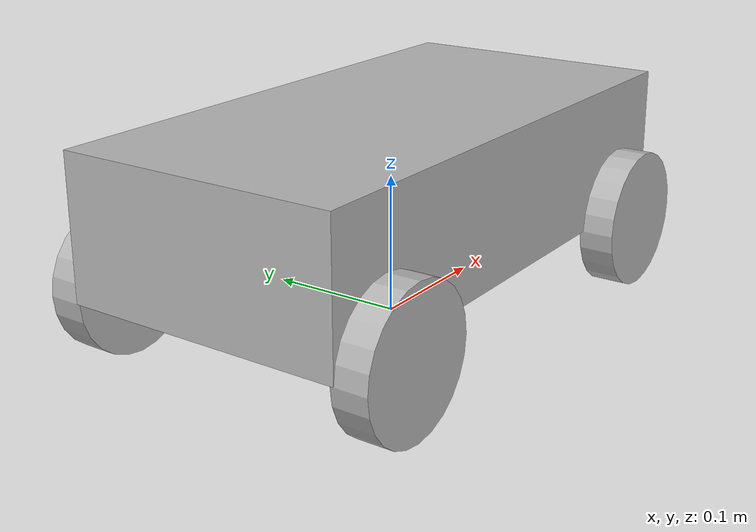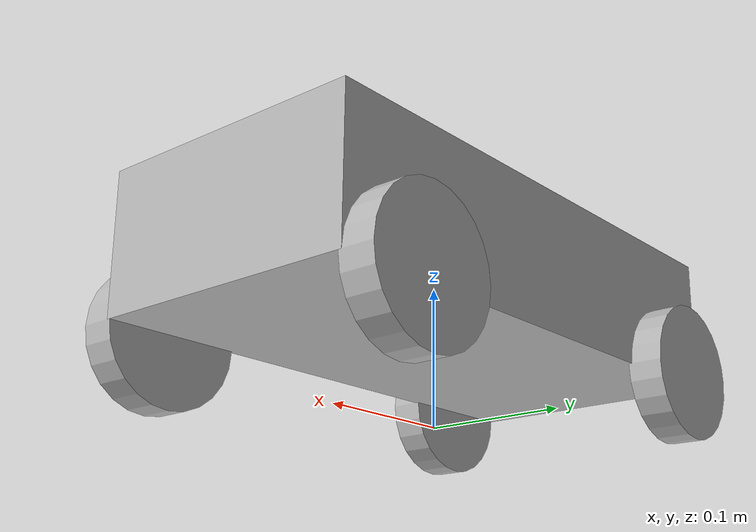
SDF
<?xml version='1.0'?>
<sdf version='1.3'>
  <model name="volksbot">
  <static>false</static>

<!-- CHASSIS -->
  <link name='chassis'>
    <pose>0 0 .1 0 0 0</pose>
    <collision name='collision'>
        <geometry>
            <box>
                <size>.4 .2 .1</size>
            </box>
        </geometry>
    </collision>
    <visual name='visual'>
        <geometry>
            <box>
                <size>.4 .2 .1</size>
            </box>
        </geometry>
    </visual>
    </link>

  <!-- LEFT back Wheel -->
    <link name="left_back_wheel">
        <pose>0.15 0.11 0.05 0 1.5707 1.5707</pose>
        <collision name="collision">
            <geometry>
                <cylinder>
                    <radius>.05</radius>
                    <length>.025</length>
                </cylinder>
            </geometry>
        </collision>
        <visual name="visual">
            <geometry>
                <cylinder>
                    <radius>.05</radius>
                    <length>.025</length>
                </cylinder>
            </geometry>
        </visual>
    </link>

    <!-- LEFT front Wheel -->
    <link name="left_front_wheel">
        <pose>-0.15 0.11 0.05 0 1.5707 1.5707</pose>
        <collision name="collision">
            <geometry>
                <cylinder>
                    <radius>.05</radius>
                    <length>.025</length>
                </cylinder>
            </geometry>
        </collision>
        <visual name="visual">
            <geometry>
                <cylinder>
                    <radius>.05</radius>
                    <length>.025</length>
                </cylinder>
            </geometry>
        </visual>
    </link>

    <!-- RIGHT back Wheel -->
    <link name="right_back_wheel">
        <pose>0.15 -0.11 0.05 0 1.5707 1.5707</pose>
        <collision name="collision">
            <geometry>
                <cylinder>
                    <radius>.05</radius>
                    <length>.025</length>
                </cylinder>
            </geometry>
        </collision>
        <visual name="visual">
            <geometry>
                <cylinder>
                    <radius>.05</radius>
                    <length>.025</length>
                </cylinder>
            </geometry>
        </visual>
    </link>

    <!-- RIGHT front Wheel -->
    <link name="right_front_wheel">
        <pose>-0.15 -0.11 0.05 0 1.5707 1.5707</pose>
        <collision name="collision">
            <geometry>
                <cylinder>
                    <radius>.05</radius>
                    <length>.025</length>
                </cylinder>
            </geometry>
        </collision>
        <visual name="visual">
            <geometry>
                <cylinder>
                    <radius>.05</radius>
                    <length>.025</length>
                </cylinder>
            </geometry>
        </visual>
    </link>

  <!-- LEFT back Wheel Chassis joint -->
    <joint type="revolute" name="left_back_wheel_hinge">
        <pose>0 0 -0.03 0 0 0</pose>
        <child>left_back_wheel</child>
        <parent>chassis</parent>
        <axis>
            <xyz>0 1 0</xyz>
        </axis>
    </joint>

    <!-- LEFT front Wheel Chassis joint -->
    <joint type="revolute" name="left_front_wheel_hinge">
        <pose>0 0 -0.03 0 0 0</pose>
        <child>left_front_wheel</child>
        <parent>chassis</parent>
        <axis>
            <xyz>0 1 0</xyz>
        </axis>
    </joint>

<!-- RIGHT Wheel Chassis joint -->
    <joint type="revolute" name="right_back_wheel_hinge">
        <pose>0 0 0.03 0 0 0</pose>
        <child>right_back_wheel</child>
        <parent>chassis</parent>
        <axis>
            <xyz>0 1 0</xyz>
        </axis>
  </joint>

  <joint type="revolute" name="right_front_wheel_hinge">
    <pose>0 0 0.03 0 0 0</pose>
    <child>right_front_wheel</child>
    <parent>chassis</parent>
    <axis>
        <xyz>0 1 0</xyz>
    </axis>
  </joint>

  </model>
</sdf>
